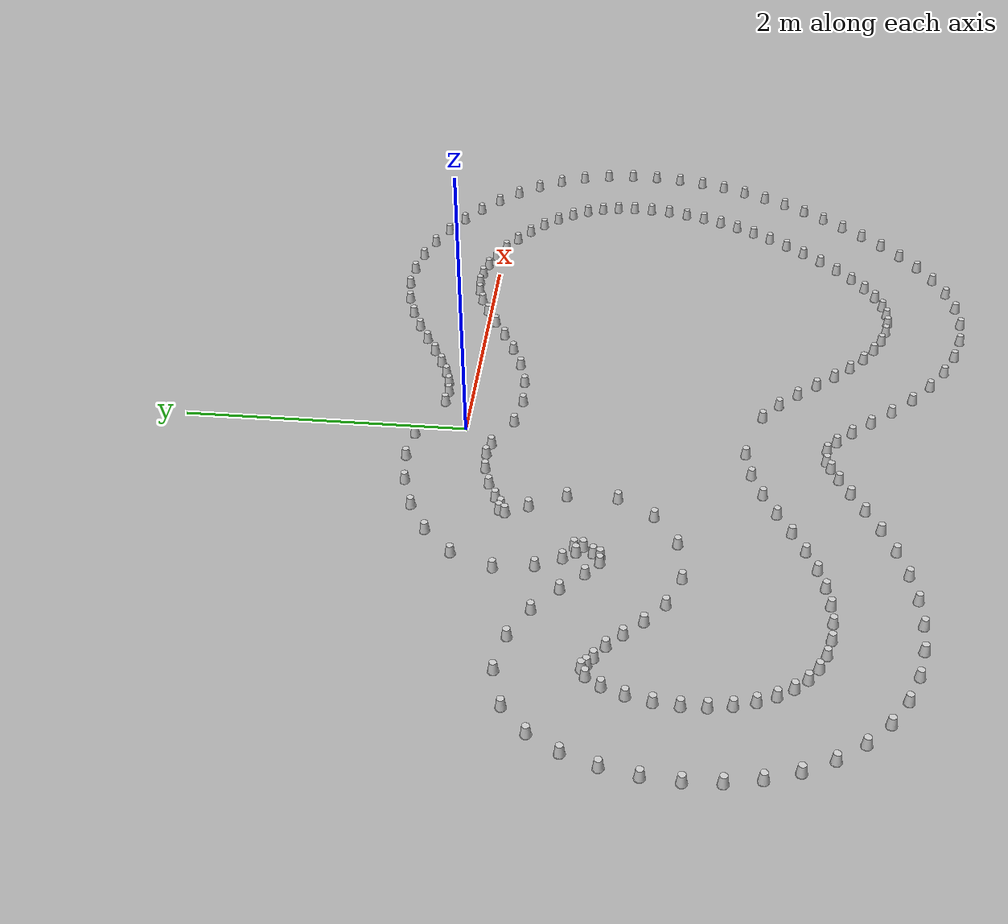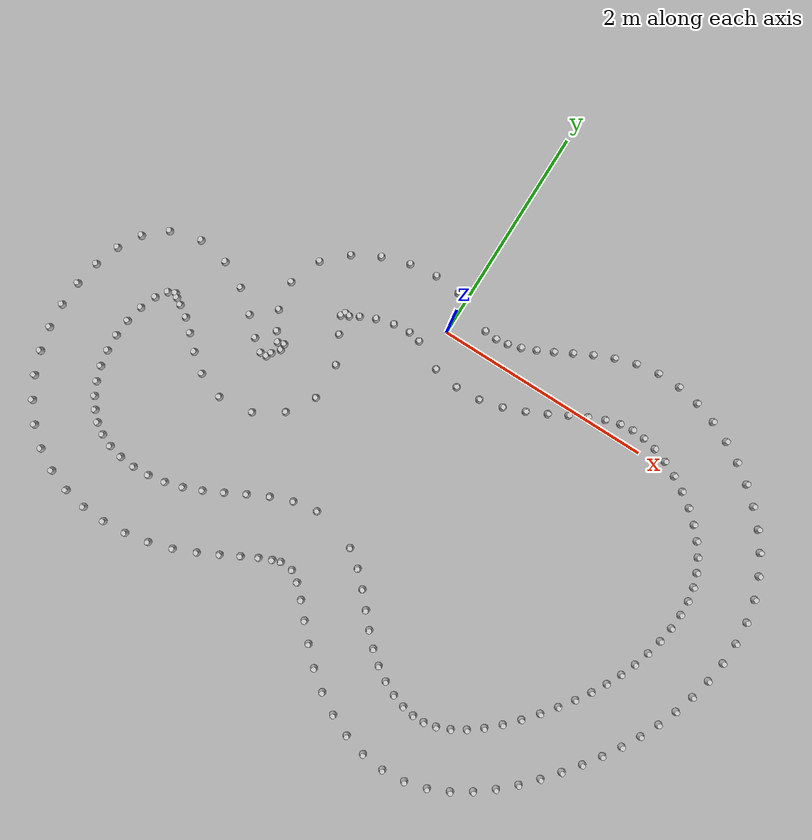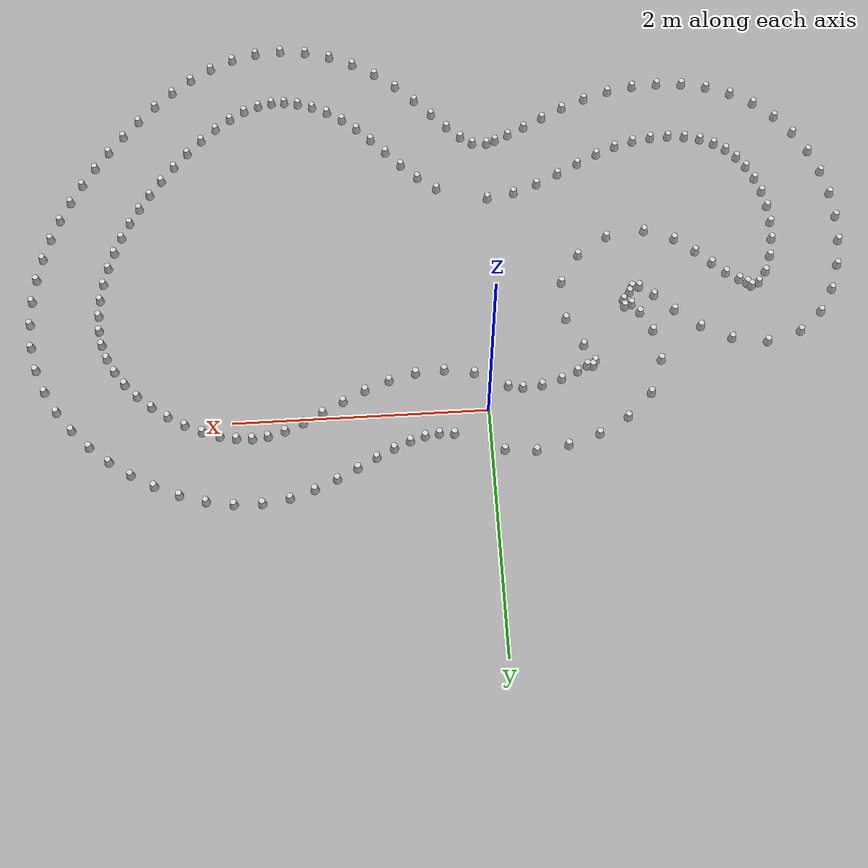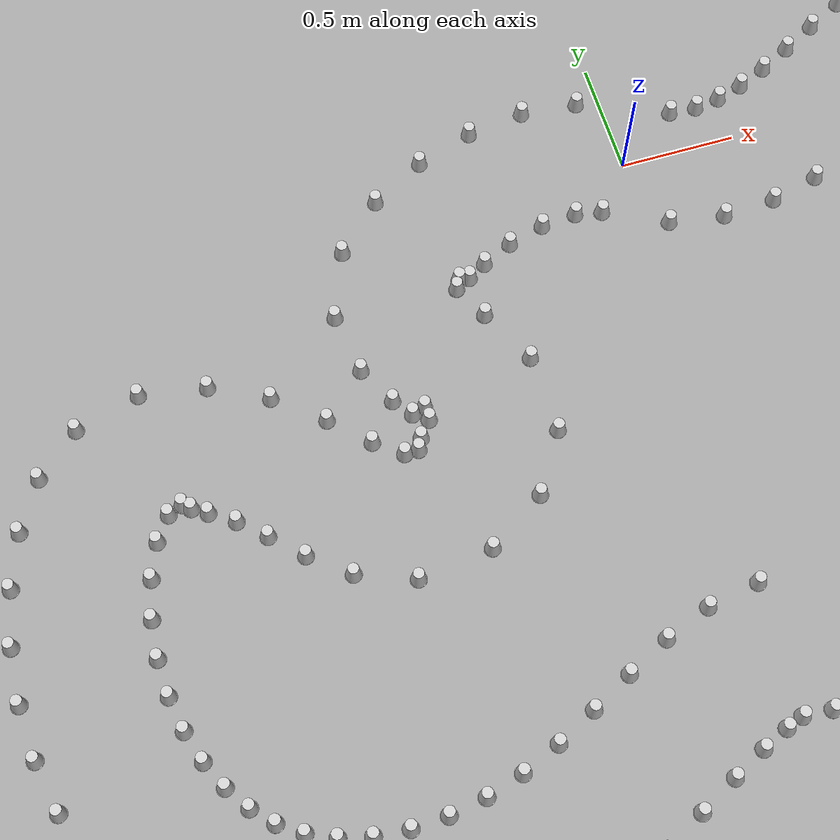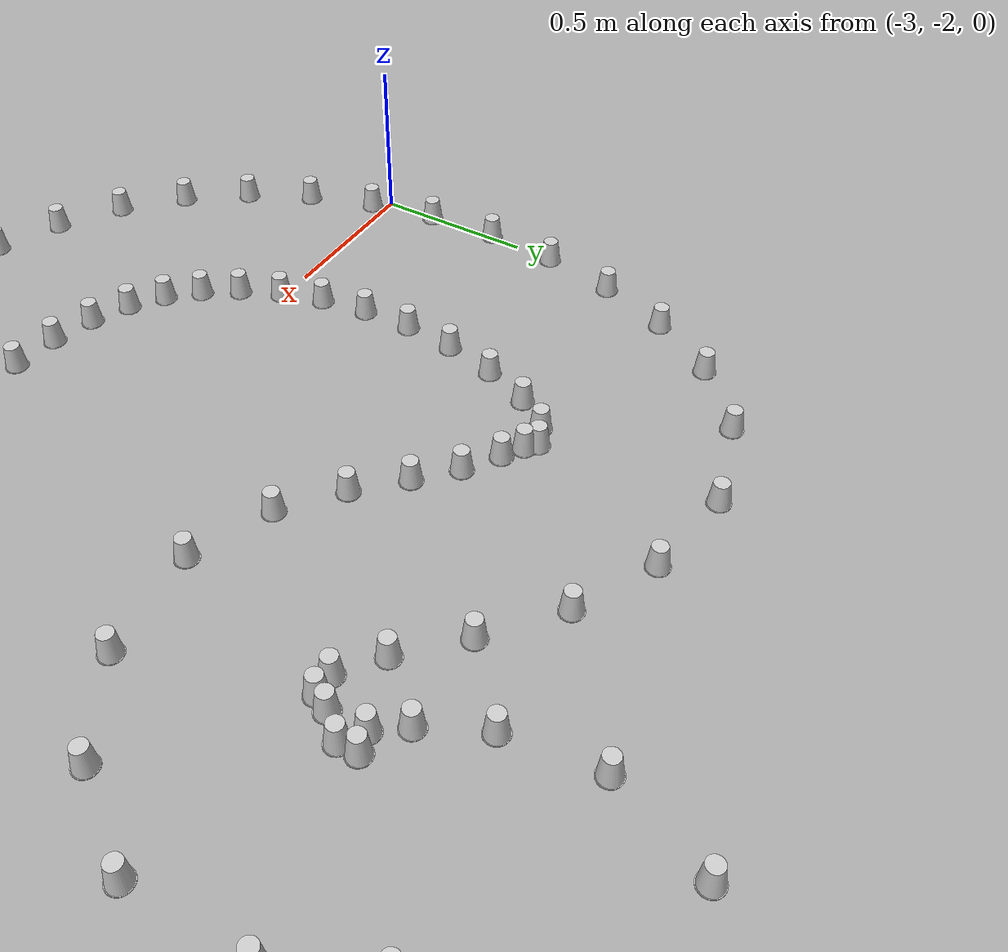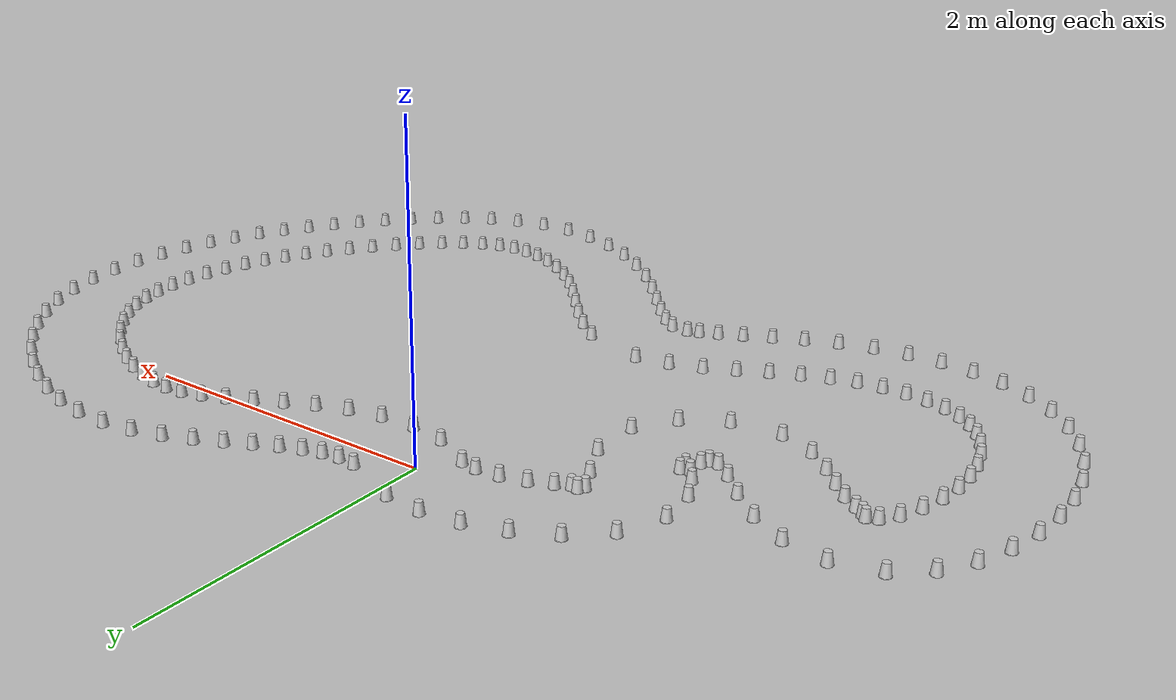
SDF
<?xml version='1.0' encoding='UTF-8'?>
<sdf version="1.4">
  <model name="some track">
    <include>
      <uri>model://cone_yellow</uri>
      <pose>0.09080547458916202 -0.3265478729124546 0 0 0 0</pose>
      <name>cone_right_0</name>
    </include>
    <include>
      <uri>model://cone_yellow</uri>
      <pose>0.32776838674991227 -0.3641905563137714 0 0 0 0</pose>
      <name>cone_right_1</name>
    </include>
    <include>
      <uri>model://cone_yellow</uri>
      <pose>0.5564373133893229 -0.35098801641787836 0 0 0 0</pose>
      <name>cone_right_2</name>
    </include>
    <include>
      <uri>model://cone_yellow</uri>
      <pose>0.7682262807859699 -0.29887479999152383 0 0 0 0</pose>
      <name>cone_right_3</name>
    </include>
    <include>
      <uri>model://cone_yellow</uri>
      <pose>0.9609171764260821 -0.2229073412632672 0 0 0 0</pose>
      <name>cone_right_4</name>
    </include>
    <include>
      <uri>model://cone_yellow</uri>
      <pose>1.1370373449991424 -0.13630695671825027 0 0 0 0</pose>
      <name>cone_right_5</name>
    </include>
    <include>
      <uri>model://cone_yellow</uri>
      <pose>1.3000594068370326 -0.0496311749462644 0 0 0 0</pose>
      <name>cone_right_6</name>
    </include>
    <include>
      <uri>model://cone_yellow</uri>
      <pose>1.4524078666509643 0.02825517890002499 0 0 0 0</pose>
      <name>cone_right_7</name>
    </include>
    <include>
      <uri>model://cone_yellow</uri>
      <pose>1.5949247208116666 0.08961465892930254 0 0 0 0</pose>
      <name>cone_right_8</name>
    </include>
    <include>
      <uri>model://cone_yellow</uri>
      <pose>1.7271252171067804 0.1282200992774783 0 0 0 0</pose>
      <name>cone_right_9</name>
    </include>
    <include>
      <uri>model://cone_yellow</uri>
      <pose>1.8492031137502438 0.14087333130869828 0 0 0 0</pose>
      <name>cone_right_10</name>
    </include>
    <include>
      <uri>model://cone_yellow</uri>
      <pose>1.9715569844554 0.13191682739319116 0 0 0 0</pose>
      <name>cone_right_11</name>
    </include>
    <include>
      <uri>model://cone_yellow</uri>
      <pose>2.101697440080636 0.1039019547927893 0 0 0 0</pose>
      <name>cone_right_12</name>
    </include>
    <include>
      <uri>model://cone_yellow</uri>
      <pose>2.2370611450646822 0.0571879693889637 0 0 0 0</pose>
      <name>cone_right_13</name>
    </include>
    <include>
      <uri>model://cone_yellow</uri>
      <pose>2.3738127539368 -0.006894713480389003 0 0 0 0</pose>
      <name>cone_right_14</name>
    </include>
    <include>
      <uri>model://cone_yellow</uri>
      <pose>2.507884813371142 -0.08611019913512663 0 0 0 0</pose>
      <name>cone_right_15</name>
    </include>
    <include>
      <uri>model://cone_yellow</uri>
      <pose>2.6348861181985006 -0.1777173345187958 0 0 0 0</pose>
      <name>cone_right_16</name>
    </include>
    <include>
      <uri>model://cone_yellow</uri>
      <pose>2.7499884062297775 -0.2791932248279393 0 0 0 0</pose>
      <name>cone_right_17</name>
    </include>
    <include>
      <uri>model://cone_yellow</uri>
      <pose>2.8502558253446733 -0.3887681257389536 0 0 0 0</pose>
      <name>cone_right_18</name>
    </include>
    <include>
      <uri>model://cone_yellow</uri>
      <pose>2.933441441340228 -0.5047684348185267 0 0 0 0</pose>
      <name>cone_right_19</name>
    </include>
    <include>
      <uri>model://cone_yellow</uri>
      <pose>2.9977658264091733 -0.6255602341146667 0 0 0 0</pose>
      <name>cone_right_20</name>
    </include>
    <include>
      <uri>model://cone_yellow</uri>
      <pose>3.042010923152127 -0.749847962701097 0 0 0 0</pose>
      <name>cone_right_21</name>
    </include>
    <include>
      <uri>model://cone_yellow</uri>
      <pose>3.066664770621211 -0.8782618037619339 0 0 0 0</pose>
      <name>cone_right_22</name>
    </include>
    <include>
      <uri>model://cone_yellow</uri>
      <pose>3.075063262118877 -1.0151375408888246 0 0 0 0</pose>
      <name>cone_right_23</name>
    </include>
    <include>
      <uri>model://cone_yellow</uri>
      <pose>3.0681808937832136 -1.1594197373280648 0 0 0 0</pose>
      <name>cone_right_24</name>
    </include>
    <include>
      <uri>model://cone_yellow</uri>
      <pose>3.046950772021386 -1.3077281324289205 0 0 0 0</pose>
      <name>cone_right_25</name>
    </include>
    <include>
      <uri>model://cone_yellow</uri>
      <pose>3.012894980847146 -1.45628067757669 0 0 0 0</pose>
      <name>cone_right_26</name>
    </include>
    <include>
      <uri>model://cone_yellow</uri>
      <pose>2.9678276266255663 -1.6014853163341007 0 0 0 0</pose>
      <name>cone_right_27</name>
    </include>
    <include>
      <uri>model://cone_yellow</uri>
      <pose>2.9126828580862854 -1.7420430905403208 0 0 0 0</pose>
      <name>cone_right_28</name>
    </include>
    <include>
      <uri>model://cone_yellow</uri>
      <pose>2.8476951141247753 -1.8789695502602983 0 0 0 0</pose>
      <name>cone_right_29</name>
    </include>
    <include>
      <uri>model://cone_yellow</uri>
      <pose>2.7729188723394866 -2.0135804630722247 0 0 0 0</pose>
      <name>cone_right_30</name>
    </include>
    <include>
      <uri>model://cone_yellow</uri>
      <pose>2.688394742078291 -2.1470264720223526 0 0 0 0</pose>
      <name>cone_right_31</name>
    </include>
    <include>
      <uri>model://cone_yellow</uri>
      <pose>2.5942069197123336 -2.2803060370069317 0 0 0 0</pose>
      <name>cone_right_32</name>
    </include>
    <include>
      <uri>model://cone_yellow</uri>
      <pose>2.4905274409236773 -2.414274848821724 0 0 0 0</pose>
      <name>cone_right_33</name>
    </include>
    <include>
      <uri>model://cone_yellow</uri>
      <pose>2.378650352702582 -2.546785437170825 0 0 0 0</pose>
      <name>cone_right_34</name>
    </include>
    <include>
      <uri>model://cone_yellow</uri>
      <pose>2.261309762290442 -2.671328780291256 0 0 0 0</pose>
      <name>cone_right_35</name>
    </include>
    <include>
      <uri>model://cone_yellow</uri>
      <pose>2.1401021885069698 -2.7831559376675465 0 0 0 0</pose>
      <name>cone_right_36</name>
    </include>
    <include>
      <uri>model://cone_yellow</uri>
      <pose>2.0168430999845275 -2.8779179659719794 0 0 0 0</pose>
      <name>cone_right_37</name>
    </include>
    <include>
      <uri>model://cone_yellow</uri>
      <pose>1.893835693588156 -2.95169235710659 0 0 0 0</pose>
      <name>cone_right_38</name>
    </include>
    <include>
      <uri>model://cone_yellow</uri>
      <pose>1.7737115468843865 -3.0015002927214125 0 0 0 0</pose>
      <name>cone_right_39</name>
    </include>
    <include>
      <uri>model://cone_yellow</uri>
      <pose>1.658638593840801 -3.025954580535363 0 0 0 0</pose>
      <name>cone_right_40</name>
    </include>
    <include>
      <uri>model://cone_yellow</uri>
      <pose>1.5476833808227501 -3.025992735057293 0 0 0 0</pose>
      <name>cone_right_41</name>
    </include>
    <include>
      <uri>model://cone_yellow</uri>
      <pose>1.4321553379411707 -3.005084114357297 0 0 0 0</pose>
      <name>cone_right_42</name>
    </include>
    <include>
      <uri>model://cone_yellow</uri>
      <pose>1.3097051664571875 -2.963147223079 0 0 0 0</pose>
      <name>cone_right_43</name>
    </include>
    <include>
      <uri>model://cone_yellow</uri>
      <pose>1.1834726386370702 -2.8998426123983987 0 0 0 0</pose>
      <name>cone_right_44</name>
    </include>
    <include>
      <uri>model://cone_yellow</uri>
      <pose>1.0575649158059353 -2.8159573118959362 0 0 0 0</pose>
      <name>cone_right_45</name>
    </include>
    <include>
      <uri>model://cone_yellow</uri>
      <pose>0.9362204752700969 -2.7132392155453062 0 0 0 0</pose>
      <name>cone_right_46</name>
    </include>
    <include>
      <uri>model://cone_yellow</uri>
      <pose>0.8197532209568569 -2.5936469333067955 0 0 0 0</pose>
      <name>cone_right_47</name>
    </include>
    <include>
      <uri>model://cone_yellow</uri>
      <pose>0.7007793797645612 -2.459808805067724 0 0 0 0</pose>
      <name>cone_right_48</name>
    </include>
    <include>
      <uri>model://cone_yellow</uri>
      <pose>0.5766053222534464 -2.3207989120000763 0 0 0 0</pose>
      <name>cone_right_49</name>
    </include>
    <include>
      <uri>model://cone_yellow</uri>
      <pose>0.44255148925050514 -2.1867181881661666 0 0 0 0</pose>
      <name>cone_right_50</name>
    </include>
    <include>
      <uri>model://cone_yellow</uri>
      <pose>0.2889378255369376 -2.0676254537835037 0 0 0 0</pose>
      <name>cone_right_51</name>
    </include>
    <include>
      <uri>model://cone_yellow</uri>
      <pose>-0.1310392919406426 -1.9492011549824275 0 0 0 0</pose>
      <name>cone_right_52</name>
    </include>
    <include>
      <uri>model://cone_yellow</uri>
      <pose>-0.35369820410069913 -1.9872521143286839 0 0 0 0</pose>
      <name>cone_right_53</name>
    </include>
    <include>
      <uri>model://cone_yellow</uri>
      <pose>-0.5529340564867088 -2.0625413724825448 0 0 0 0</pose>
      <name>cone_right_54</name>
    </include>
    <include>
      <uri>model://cone_yellow</uri>
      <pose>-0.7372805897794171 -2.1533441075670074 0 0 0 0</pose>
      <name>cone_right_55</name>
    </include>
    <include>
      <uri>model://cone_yellow</uri>
      <pose>-0.9135055886395753 -2.2467303399619865 0 0 0 0</pose>
      <name>cone_right_56</name>
    </include>
    <include>
      <uri>model://cone_yellow</uri>
      <pose>-1.0841111639466832 -2.3323574121318633 0 0 0 0</pose>
      <name>cone_right_57</name>
    </include>
    <include>
      <uri>model://cone_yellow</uri>
      <pose>-1.248488516062133 -2.4006466300180445 0 0 0 0</pose>
      <name>cone_right_58</name>
    </include>
    <include>
      <uri>model://cone_yellow</uri>
      <pose>-1.4064553983426642 -2.446339628664022 0 0 0 0</pose>
      <name>cone_right_59</name>
    </include>
    <include>
      <uri>model://cone_yellow</uri>
      <pose>-1.5620482740671275 -2.47212810229594 0 0 0 0</pose>
      <name>cone_right_60</name>
    </include>
    <include>
      <uri>model://cone_yellow</uri>
      <pose>-1.7126227574736115 -2.4782168301736838 0 0 0 0</pose>
      <name>cone_right_61</name>
    </include>
    <include>
      <uri>model://cone_yellow</uri>
      <pose>-1.8540261550504262 -2.464665125471386 0 0 0 0</pose>
      <name>cone_right_62</name>
    </include>
    <include>
      <uri>model://cone_yellow</uri>
      <pose>-1.982347108805624 -2.432128889212546 0 0 0 0</pose>
      <name>cone_right_63</name>
    </include>
    <include>
      <uri>model://cone_yellow</uri>
      <pose>-2.0943848695778753 -2.3818455177528186 0 0 0 0</pose>
      <name>cone_right_64</name>
    </include>
    <include>
      <uri>model://cone_yellow</uri>
      <pose>-2.188332271051258 -2.3152219693782206 0 0 0 0</pose>
      <name>cone_right_65</name>
    </include>
    <include>
      <uri>model://cone_yellow</uri>
      <pose>-2.266634810862006 -2.232360982186612 0 0 0 0</pose>
      <name>cone_right_66</name>
    </include>
    <include>
      <uri>model://cone_yellow</uri>
      <pose>-2.333988512421216 -2.131224780710076 0 0 0 0</pose>
      <name>cone_right_67</name>
    </include>
    <include>
      <uri>model://cone_yellow</uri>
      <pose>-2.3891524498227454 -2.0122980074406502 0 0 0 0</pose>
      <name>cone_right_68</name>
    </include>
    <include>
      <uri>model://cone_yellow</uri>
      <pose>-2.4296634392589276 -1.8777510160241109 0 0 0 0</pose>
      <name>cone_right_69</name>
    </include>
    <include>
      <uri>model://cone_yellow</uri>
      <pose>-2.453171430768857 -1.7307276533385607 0 0 0 0</pose>
      <name>cone_right_70</name>
    </include>
    <include>
      <uri>model://cone_yellow</uri>
      <pose>-2.45774378302246 -1.5748935376110709 0 0 0 0</pose>
      <name>cone_right_71</name>
    </include>
    <include>
      <uri>model://cone_yellow</uri>
      <pose>-2.4419031857919657 -1.4140932732486542 0 0 0 0</pose>
      <name>cone_right_72</name>
    </include>
    <include>
      <uri>model://cone_yellow</uri>
      <pose>-2.4045957647131724 -1.2528855786750657 0 0 0 0</pose>
      <name>cone_right_73</name>
    </include>
    <include>
      <uri>model://cone_yellow</uri>
      <pose>-2.3466814562888483 -1.1087403886350087 0 0 0 0</pose>
      <name>cone_right_74</name>
    </include>
    <include>
      <uri>model://cone_yellow</uri>
      <pose>-2.275708344588273 -1.0107057734173024 0 0 0 0</pose>
      <name>cone_right_75</name>
    </include>
    <include>
      <uri>model://cone_yellow</uri>
      <pose>-2.213166128551237 -0.982893031265836 0 0 0 0</pose>
      <name>cone_right_76</name>
    </include>
    <include>
      <uri>model://cone_yellow</uri>
      <pose>-2.1819985145171255 -1.0110016709980751 0 0 0 0</pose>
      <name>cone_right_77</name>
    </include>
    <include>
      <uri>model://cone_yellow</uri>
      <pose>-2.1222212561712817 -1.0487910723946476 0 0 0 0</pose>
      <name>cone_right_78</name>
    </include>
    <include>
      <uri>model://cone_yellow</uri>
      <pose>-2.0231789113886642 -1.1157421627017974 0 0 0 0</pose>
      <name>cone_right_79</name>
    </include>
    <include>
      <uri>model://cone_yellow</uri>
      <pose>-1.919327819016068 -1.2125484177440105 0 0 0 0</pose>
      <name>cone_right_80</name>
    </include>
    <include>
      <uri>model://cone_yellow</uri>
      <pose>-1.798164494654276 -1.3335700087195503 0 0 0 0</pose>
      <name>cone_right_81</name>
    </include>
    <include>
      <uri>model://cone_yellow</uri>
      <pose>-1.6393118284631032 -1.4607832547300628 0 0 0 0</pose>
      <name>cone_right_82</name>
    </include>
    <include>
      <uri>model://cone_yellow</uri>
      <pose>-1.4005447338265213 -1.553175915126772 0 0 0 0</pose>
      <name>cone_right_83</name>
    </include>
    <include>
      <uri>model://cone_yellow</uri>
      <pose>-1.0832296648428439 -1.5145040830004082 0 0 0 0</pose>
      <name>cone_right_84</name>
    </include>
    <include>
      <uri>model://cone_yellow</uri>
      <pose>-0.8315070476078713 -1.3530258872600909 0 0 0 0</pose>
      <name>cone_right_85</name>
    </include>
    <include>
      <uri>model://cone_yellow</uri>
      <pose>-0.6731755311013166 -1.105880317849672 0 0 0 0</pose>
      <name>cone_right_86</name>
    </include>
    <include>
      <uri>model://cone_yellow</uri>
      <pose>-0.6787248600349125 -0.7666539225030211 0 0 0 0</pose>
      <name>cone_right_87</name>
    </include>
    <include>
      <uri>model://cone_yellow</uri>
      <pose>-0.7987711898015695 -0.5224926541919652 0 0 0 0</pose>
      <name>cone_right_88</name>
    </include>
    <include>
      <uri>model://cone_yellow</uri>
      <pose>-0.8740701605635741 -0.37286820688587075 0 0 0 0</pose>
      <name>cone_right_89</name>
    </include>
    <include>
      <uri>model://cone_yellow</uri>
      <pose>-0.851207625127105 -0.3327422183066542 0 0 0 0</pose>
      <name>cone_right_90</name>
    </include>
    <include>
      <uri>model://cone_yellow</uri>
      <pose>-0.807496736631902 -0.3389847348587711 0 0 0 0</pose>
      <name>cone_right_91</name>
    </include>
    <include>
      <uri>model://cone_yellow</uri>
      <pose>-0.7267410286515454 -0.2929468798234601 0 0 0 0</pose>
      <name>cone_right_92</name>
    </include>
    <include>
      <uri>model://cone_yellow</uri>
      <pose>-0.5941594211802256 -0.23256202586386548 0 0 0 0</pose>
      <name>cone_right_93</name>
    </include>
    <include>
      <uri>model://cone_yellow</uri>
      <pose>-0.43517286700681745 -0.1885199229766643 0 0 0 0</pose>
      <name>cone_right_94</name>
    </include>
    <include>
      <uri>model://cone_yellow</uri>
      <pose>-0.2813844948405543 -0.1753941739772737 0 0 0 0</pose>
      <name>cone_right_95</name>
    </include>
    <include>
      <uri>model://cone_yellow</uri>
      <pose>-0.1680746304919949 -0.19762287530581035 0 0 0 0</pose>
      <name>cone_right_96</name>
    </include>
    <include>
      <uri>model://cone_blue</uri>
      <pose>0.28100075696304316 0.1895197142917019 0 0 0 0</pose>
      <name>cone_left_0</name>
    </include>
    <include>
      <uri>model://cone_blue</uri>
      <pose>0.39842960870859256 0.18125145867160378 0 0 0 0</pose>
      <name>cone_left_1</name>
    </include>
    <include>
      <uri>model://cone_blue</uri>
      <pose>0.5097291215783407 0.1970250717631874 0 0 0 0</pose>
      <name>cone_left_2</name>
    </include>
    <include>
      <uri>model://cone_blue</uri>
      <pose>0.6264764125424762 0.23254497274275468 0 0 0 0</pose>
      <name>cone_left_3</name>
    </include>
    <include>
      <uri>model://cone_blue</uri>
      <pose>0.7538807373635351 0.28663746824841885 0 0 0 0</pose>
      <name>cone_left_4</name>
    </include>
    <include>
      <uri>model://cone_blue</uri>
      <pose>0.8924058946007988 0.3562937471748753 0 0 0 0</pose>
      <name>cone_left_5</name>
    </include>
    <include>
      <uri>model://cone_blue</uri>
      <pose>1.0415704071711511 0.4358412105214694 0 0 0 0</pose>
      <name>cone_left_6</name>
    </include>
    <include>
      <uri>model://cone_blue</uri>
      <pose>1.2019409136121433 0.5179145558504201 0 0 0 0</pose>
      <name>cone_left_7</name>
    </include>
    <include>
      <uri>model://cone_blue</uri>
      <pose>1.375666560801812 0.5940211014625963 0 0 0 0</pose>
      <name>cone_left_8</name>
    </include>
    <include>
      <uri>model://cone_blue</uri>
      <pose>1.5662232442012807 0.6541578856316419 0 0 0 0</pose>
      <name>cone_left_9</name>
    </include>
    <include>
      <uri>model://cone_blue</uri>
      <pose>1.7761449356463752 0.6859994658978807 0 0 0 0</pose>
      <name>cone_left_10</name>
    </include>
    <include>
      <uri>model://cone_blue</uri>
      <pose>1.99335957864065 0.6814845182983182 0 0 0 0</pose>
      <name>cone_left_11</name>
    </include>
    <include>
      <uri>model://cone_blue</uri>
      <pose>2.205043306629799 0.6441052793542016 0 0 0 0</pose>
      <name>cone_left_12</name>
    </include>
    <include>
      <uri>model://cone_blue</uri>
      <pose>2.4083367989614826 0.5798395267215937 0 0 0 0</pose>
      <name>cone_left_13</name>
    </include>
    <include>
      <uri>model://cone_blue</uri>
      <pose>2.601652744892826 0.49369387860013164 0 0 0 0</pose>
      <name>cone_left_14</name>
    </include>
    <include>
      <uri>model://cone_blue</uri>
      <pose>2.7836359491258515 0.3897693141137501 0 0 0 0</pose>
      <name>cone_left_15</name>
    </include>
    <include>
      <uri>model://cone_blue</uri>
      <pose>2.9532987884225106 0.2707393205113374 0 0 0 0</pose>
      <name>cone_left_16</name>
    </include>
    <include>
      <uri>model://cone_blue</uri>
      <pose>3.110237628735249 0.13640333156323614 0 0 0 0</pose>
      <name>cone_left_17</name>
    </include>
    <include>
      <uri>model://cone_blue</uri>
      <pose>3.2521871874733064 -0.013333470788959245 0 0 0 0</pose>
      <name>cone_left_18</name>
    </include>
    <include>
      <uri>model://cone_blue</uri>
      <pose>3.376193264128578 -0.1784697627133616 0 0 0 0</pose>
      <name>cone_left_19</name>
    </include>
    <include>
      <uri>model://cone_blue</uri>
      <pose>3.4788341517972707 -0.35896453589676225 0 0 0 0</pose>
      <name>cone_left_20</name>
    </include>
    <include>
      <uri>model://cone_blue</uri>
      <pose>3.556126777663876 -0.5544384231702573 0 0 0 0</pose>
      <name>cone_left_21</name>
    </include>
    <include>
      <uri>model://cone_blue</uri>
      <pose>3.6042028393459433 -0.7618452041221684 0 0 0 0</pose>
      <name>cone_left_22</name>
    </include>
    <include>
      <uri>model://cone_blue</uri>
      <pose>3.6233364014701133 -0.97158797526597 0 0 0 0</pose>
      <name>cone_left_23</name>
    </include>
    <include>
      <uri>model://cone_blue</uri>
      <pose>3.6178400982422243 -1.1787784292644312 0 0 0 0</pose>
      <name>cone_left_24</name>
    </include>
    <include>
      <uri>model://cone_blue</uri>
      <pose>3.59206795359904 -1.3808530826773484 0 0 0 0</pose>
      <name>cone_left_25</name>
    </include>
    <include>
      <uri>model://cone_blue</uri>
      <pose>3.549785013870732 -1.5756502400284835 0 0 0 0</pose>
      <name>cone_left_26</name>
    </include>
    <include>
      <uri>model://cone_blue</uri>
      <pose>3.493971431417683 -1.761712332404658 0 0 0 0</pose>
      <name>cone_left_27</name>
    </include>
    <include>
      <uri>model://cone_blue</uri>
      <pose>3.4256663829844665 -1.9404061495584681 0 0 0 0</pose>
      <name>cone_left_28</name>
    </include>
    <include>
      <uri>model://cone_blue</uri>
      <pose>3.34560685943414 -2.1126015127204525 0 0 0 0</pose>
      <name>cone_left_29</name>
    </include>
    <include>
      <uri>model://cone_blue</uri>
      <pose>3.2547086166546837 -2.2788701957659296 0 0 0 0</pose>
      <name>cone_left_30</name>
    </include>
    <include>
      <uri>model://cone_blue</uri>
      <pose>3.1539012787846614 -2.439949097102152 0 0 0 0</pose>
      <name>cone_left_31</name>
    </include>
    <include>
      <uri>model://cone_blue</uri>
      <pose>3.044070882939354 -2.5967272982863823 0 0 0 0</pose>
      <name>cone_left_32</name>
    </include>
    <include>
      <uri>model://cone_blue</uri>
      <pose>2.926015620956864 -2.750206456520944 0 0 0 0</pose>
      <name>cone_left_33</name>
    </include>
    <include>
      <uri>model://cone_blue</uri>
      <pose>2.79941100113716 -2.900989441565064 0 0 0 0</pose>
      <name>cone_left_34</name>
    </include>
    <include>
      <uri>model://cone_blue</uri>
      <pose>2.662491191865395 -3.047564691076228 0 0 0 0</pose>
      <name>cone_left_35</name>
    </include>
    <include>
      <uri>model://cone_blue</uri>
      <pose>2.5146278064754535 -3.1859344890892003 0 0 0 0</pose>
      <name>cone_left_36</name>
    </include>
    <include>
      <uri>model://cone_blue</uri>
      <pose>2.3549735084885746 -3.3117011224509816 0 0 0 0</pose>
      <name>cone_left_37</name>
    </include>
    <include>
      <uri>model://cone_blue</uri>
      <pose>2.1821932331933187 -3.420040442778835 0 0 0 0</pose>
      <name>cone_left_38</name>
    </include>
    <include>
      <uri>model://cone_blue</uri>
      <pose>1.9946235351767478 -3.505184611942009 0 0 0 0</pose>
      <name>cone_left_39</name>
    </include>
    <include>
      <uri>model://cone_blue</uri>
      <pose>1.7910646126248853 -3.5597741657408863 0 0 0 0</pose>
      <name>cone_left_40</name>
    </include>
    <include>
      <uri>model://cone_blue</uri>
      <pose>1.5738555532615954 -3.575369670676028 0 0 0 0</pose>
      <name>cone_left_41</name>
    </include>
    <include>
      <uri>model://cone_blue</uri>
      <pose>1.3561901308806188 -3.5498127507591732 0 0 0 0</pose>
      <name>cone_left_42</name>
    </include>
    <include>
      <uri>model://cone_blue</uri>
      <pose>1.1462577585089744 -3.4882995294007095 0 0 0 0</pose>
      <name>cone_left_43</name>
    </include>
    <include>
      <uri>model://cone_blue</uri>
      <pose>0.946764057435029 -3.3962991035286048 0 0 0 0</pose>
      <name>cone_left_44</name>
    </include>
    <include>
      <uri>model://cone_blue</uri>
      <pose>0.759447259888302 -3.2781540916663885 0 0 0 0</pose>
      <name>cone_left_45</name>
    </include>
    <include>
      <uri>model://cone_blue</uri>
      <pose>0.5859123499667118 -3.13724890570159 0 0 0 0</pose>
      <name>cone_left_46</name>
    </include>
    <include>
      <uri>model://cone_blue</uri>
      <pose>0.42889667775273066 -2.9805980447337057 0 0 0 0</pose>
      <name>cone_left_47</name>
    </include>
    <include>
      <uri>model://cone_blue</uri>
      <pose>0.2904637920707796 -2.826061611876773 0 0 0 0</pose>
      <name>cone_left_48</name>
    </include>
    <include>
      <uri>model://cone_blue</uri>
      <pose>0.16642480030637524 -2.687202977773408 0 0 0 0</pose>
      <name>cone_left_49</name>
    </include>
    <include>
      <uri>model://cone_blue</uri>
      <pose>0.05457673957828002 -2.576558660175903 0 0 0 0</pose>
      <name>cone_left_50</name>
    </include>
    <include>
      <uri>model://cone_blue</uri>
      <pose>-0.04228285694896097 -2.5067072906813372 0 0 0 0</pose>
      <name>cone_left_51</name>
    </include>
    <include>
      <uri>model://cone_blue</uri>
      <pose>-0.16321083023101932 -2.4982594325122642 0 0 0 0</pose>
      <name>cone_left_52</name>
    </include>
    <include>
      <uri>model://cone_blue</uri>
      <pose>-0.23673124391288985 -2.524670694417262 0 0 0 0</pose>
      <name>cone_left_53</name>
    </include>
    <include>
      <uri>model://cone_blue</uri>
      <pose>-0.34958471752917514 -2.5735688143538535 0 0 0 0</pose>
      <name>cone_left_54</name>
    </include>
    <include>
      <uri>model://cone_blue</uri>
      <pose>-0.49194611713345815 -2.645595056303045 0 0 0 0</pose>
      <name>cone_left_55</name>
    </include>
    <include>
      <uri>model://cone_blue</uri>
      <pose>-0.6557562647993276 -2.7325958419889314 0 0 0 0</pose>
      <name>cone_left_56</name>
    </include>
    <include>
      <uri>model://cone_blue</uri>
      <pose>-0.8372216563816107 -2.8238302710511287 0 0 0 0</pose>
      <name>cone_left_57</name>
    </include>
    <include>
      <uri>model://cone_blue</uri>
      <pose>-1.0356581834157597 -2.9077987270319814 0 0 0 0</pose>
      <name>cone_left_58</name>
    </include>
    <include>
      <uri>model://cone_blue</uri>
      <pose>-1.248646704879479 -2.973213822630137 0 0 0 0</pose>
      <name>cone_left_59</name>
    </include>
    <include>
      <uri>model://cone_blue</uri>
      <pose>-1.4658507563017849 -3.01365006637107 0 0 0 0</pose>
      <name>cone_left_60</name>
    </include>
    <include>
      <uri>model://cone_blue</uri>
      <pose>-1.6829658199776305 -3.027416671814556 0 0 0 0</pose>
      <name>cone_left_61</name>
    </include>
    <include>
      <uri>model://cone_blue</uri>
      <pose>-1.897195685951765 -3.012968318606132 0 0 0 0</pose>
      <name>cone_left_62</name>
    </include>
    <include>
      <uri>model://cone_blue</uri>
      <pose>-2.105502808749181 -2.968163098541962 0 0 0 0</pose>
      <name>cone_left_63</name>
    </include>
    <include>
      <uri>model://cone_blue</uri>
      <pose>-2.304139034064252 -2.890277608086053 0 0 0 0</pose>
      <name>cone_left_64</name>
    </include>
    <include>
      <uri>model://cone_blue</uri>
      <pose>-2.4879713499083707 -2.77643387557933 0 0 0 0</pose>
      <name>cone_left_65</name>
    </include>
    <include>
      <uri>model://cone_blue</uri>
      <pose>-2.649098727936039 -2.6276094510468813 0 0 0 0</pose>
      <name>cone_left_66</name>
    </include>
    <include>
      <uri>model://cone_blue</uri>
      <pose>-2.7805185418562695 -2.4523336918488527 0 0 0 0</pose>
      <name>cone_left_67</name>
    </include>
    <include>
      <uri>model://cone_blue</uri>
      <pose>-2.881566943175697 -2.257304061929016 0 0 0 0</pose>
      <name>cone_left_68</name>
    </include>
    <include>
      <uri>model://cone_blue</uri>
      <pose>-2.9528023413024798 -2.047532314077419 0 0 0 0</pose>
      <name>cone_left_69</name>
    </include>
    <include>
      <uri>model://cone_blue</uri>
      <pose>-2.994670011798012 -1.8270567078517848 0 0 0 0</pose>
      <name>cone_left_70</name>
    </include>
    <include>
      <uri>model://cone_blue</uri>
      <pose>-3.00719782159286 -1.5993937314608553 0 0 0 0</pose>
      <name>cone_left_71</name>
    </include>
    <include>
      <uri>model://cone_blue</uri>
      <pose>-2.9899583065152866 -1.3678808869334413 0 0 0 0</pose>
      <name>cone_left_72</name>
    </include>
    <include>
      <uri>model://cone_blue</uri>
      <pose>-2.9421052683853137 -1.1363371618598728 0 0 0 0</pose>
      <name>cone_left_73</name>
    </include>
    <include>
      <uri>model://cone_blue</uri>
      <pose>-2.8609497293942883 -0.9137323291165652 0 0 0 0</pose>
      <name>cone_left_74</name>
    </include>
    <include>
      <uri>model://cone_blue</uri>
      <pose>-2.7371695927721986 -0.7114508379115818 0 0 0 0</pose>
      <name>cone_left_75</name>
    </include>
    <include>
      <uri>model://cone_blue</uri>
      <pose>-2.5475025826893227 -0.5461790110714168 0 0 0 0</pose>
      <name>cone_left_76</name>
    </include>
    <include>
      <uri>model://cone_blue</uri>
      <pose>-2.2699145908220175 -0.46807371672867815 0 0 0 0</pose>
      <name>cone_left_77</name>
    </include>
    <include>
      <uri>model://cone_blue</uri>
      <pose>-1.9892512335151327 -0.5151067339746194 0 0 0 0</pose>
      <name>cone_left_78</name>
    </include>
    <include>
      <uri>model://cone_blue</uri>
      <pose>-1.7536240164803933 -0.6363256854807999 0 0 0 0</pose>
      <name>cone_left_79</name>
    </include>
    <include>
      <uri>model://cone_blue</uri>
      <pose>-1.5600572947052724 -0.7961055160618639 0 0 0 0</pose>
      <name>cone_left_80</name>
    </include>
    <include>
      <uri>model://cone_blue</uri>
      <pose>-1.410979599021923 -0.9429450522790233 0 0 0 0</pose>
      <name>cone_left_81</name>
    </include>
    <include>
      <uri>model://cone_blue</uri>
      <pose>-1.2993317936815973 -1.0284482272918896 0 0 0 0</pose>
      <name>cone_left_82</name>
    </include>
    <include>
      <uri>model://cone_blue</uri>
      <pose>-1.2398445403206564 -1.0271764400251544 0 0 0 0</pose>
      <name>cone_left_83</name>
    </include>
    <include>
      <uri>model://cone_blue</uri>
      <pose>-1.2163127655302988 -0.9808479312402951 0 0 0 0</pose>
      <name>cone_left_84</name>
    </include>
    <include>
      <uri>model://cone_blue</uri>
      <pose>-1.160959229360689 -0.9126155559345096 0 0 0 0</pose>
      <name>cone_left_85</name>
    </include>
    <include>
      <uri>model://cone_blue</uri>
      <pose>-1.1623276966653329 -0.8544242403251204 0 0 0 0</pose>
      <name>cone_left_86</name>
    </include>
    <include>
      <uri>model://cone_blue</uri>
      <pose>-1.2188564248610558 -0.8703741841612989 0 0 0 0</pose>
      <name>cone_left_87</name>
    </include>
    <include>
      <uri>model://cone_blue</uri>
      <pose>-1.2794157592075237 -0.789851585033194 0 0 0 0</pose>
      <name>cone_left_88</name>
    </include>
    <include>
      <uri>model://cone_blue</uri>
      <pose>-1.3650379790623077 -0.6207605246341115 0 0 0 0</pose>
      <name>cone_left_89</name>
    </include>
    <include>
      <uri>model://cone_blue</uri>
      <pose>-1.4007224152391233 -0.355839738696179 0 0 0 0</pose>
      <name>cone_left_90</name>
    </include>
    <include>
      <uri>model://cone_blue</uri>
      <pose>-1.2869174264664716 -0.06943733242545952 0 0 0 0</pose>
      <name>cone_left_91</name>
    </include>
    <include>
      <uri>model://cone_blue</uri>
      <pose>-1.0825871441599062 0.12642591623943478 0 0 0 0</pose>
      <name>cone_left_92</name>
    </include>
    <include>
      <uri>model://cone_blue</uri>
      <pose>-0.8462170332940783 0.2562804438290435 0 0 0 0</pose>
      <name>cone_left_93</name>
    </include>
    <include>
      <uri>model://cone_blue</uri>
      <pose>-0.5960905260489305 0.33741306420745054 0 0 0 0</pose>
      <name>cone_left_94</name>
    </include>
    <include>
      <uri>model://cone_blue</uri>
      <pose>-0.344308878684069 0.37099444405746723 0 0 0 0</pose>
      <name>cone_left_95</name>
    </include>
    <include>
      <uri>model://cone_blue</uri>
      <pose>-0.09929615035776806 0.34805974368660886 0 0 0 0</pose>
      <name>cone_left_96</name>
    </include>

  </model>
</sdf>

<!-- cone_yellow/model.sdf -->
<sdf version='1.4'>
  <model name="cone_yellow">
    <link name="link">
    <collision name="collision"><geometry><box><size> 0.05 0.05 0.01</size>
             </box></geometry></collision>
      <visual name="visual">
        <geometry>
          <mesh>
            <uri>model://cup.dae</uri>
            <scale>1 1 1</scale>
          </mesh>
        </geometry>
        <material>
            <script>
              <uri>model://cone_yellow/materials/scripts</uri>
              <uri>model://cone_yellow/materials/textures</uri>
              <name>cone_yellow/Image</name>
            </script>
        </material>
      </visual>
    </link>
  </model>
</sdf>

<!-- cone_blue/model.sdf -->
<sdf version='1.4'>
  <model name="cone_blue">
    <link name="link">
    <collision name="collision"><geometry><box><size> 0.05 0.05 0.01</size>
             </box></geometry></collision>
      <visual name="visual">
        <geometry>
          <mesh>
            <uri>model://cup.dae</uri>
            <scale>1 1 1</scale>
          </mesh>
        </geometry>
        <material>
            <script>
              <uri>model://cone_blue/materials/scripts</uri>
              <uri>model://cone_blue/materials/textures</uri>
              <name>cone_blue/Image</name>
            </script>
        </material>
      </visual>
    </link>
  </model>
</sdf>
